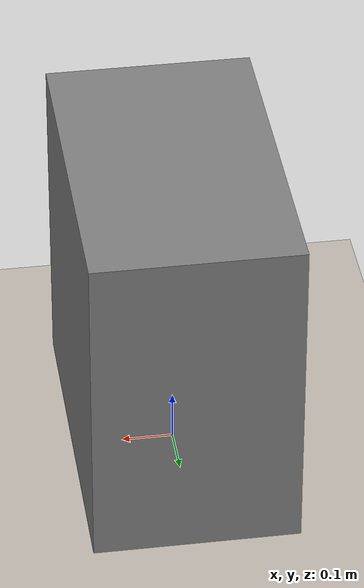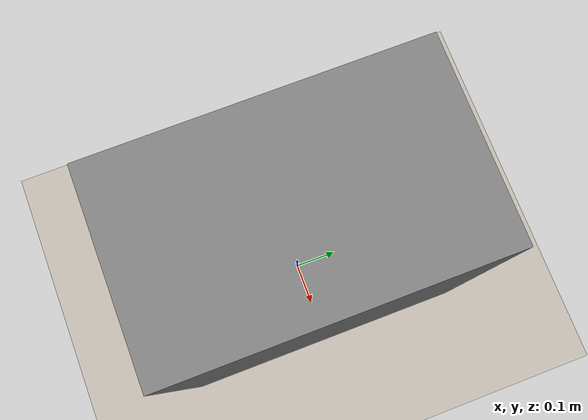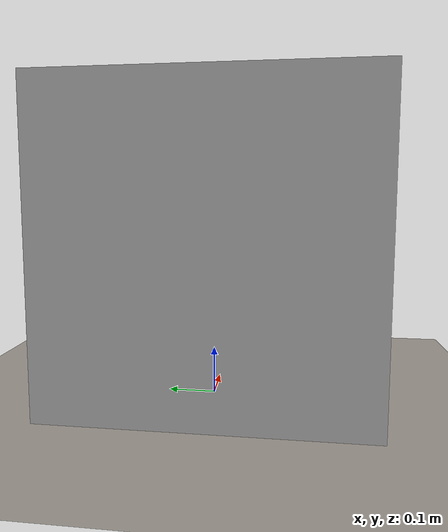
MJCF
<mujoco model="myoPandaEnv">
  <compiler angle="radian" meshdir=".." texturedir=".."/>
  <asset>
    <!-- Floor -©vk©-->
    <texture name="texfloor" type="2d" height="1" width="1" file="../myo_sim/scene/floor0.png"/>
    <material name="matfloor" reflectance="0.01" texture="texfloor" texrepeat="1 1" texuniform="true"/>
    <texture name="white_leather" file="../myo_sim/textures/white_leather.png" type="2d"/>
    <material name="mat_wh_leather" reflectance="0.01" texture="white_leather" texrepeat="1 1" texuniform="true"/>
  </asset>
  <worldbody>
    <!-- Table -->
    <!-- Table -->

    <body name="pedestal" pos="0.0 0.0 0.33">
      <geom type="box" size="0.2 0.33 0.33" rgba="0.5 0.5 0.5 1"/>
    </body>

    <!-- Floor -->
    <geom name="floor" pos="0 0 0" size="7 7 0.1" conaffinity="1" contype="1" type="plane" material="matfloor" condim="3"/>
  </worldbody>
</mujoco>
